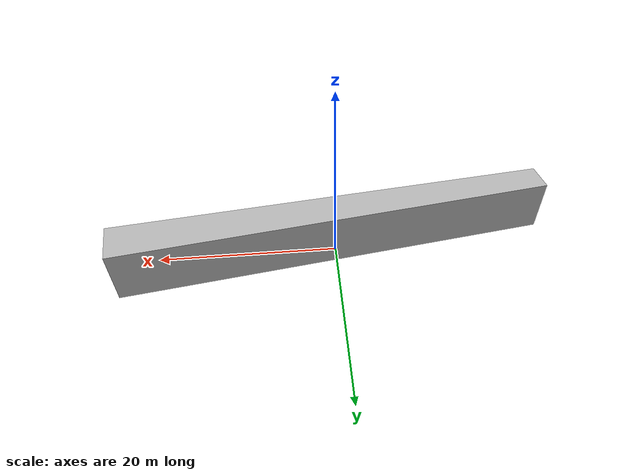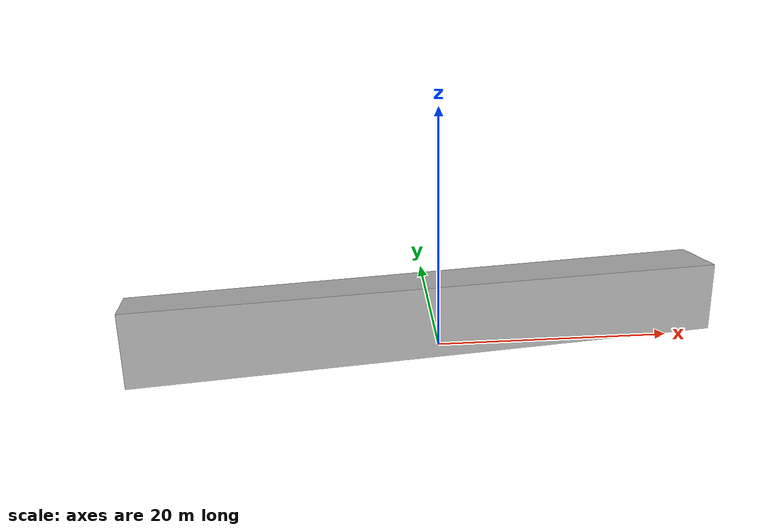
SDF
<?xml version="1.0" ?>
<sdf version="1.7">
  <model name="building_0007_assumed_a_cais_de_acesso_ferroviario">
    <static>true</static>
    <link name="building_link">
      <visual name="building_visual">
        <geometry>
          <mesh>
            <uri>model://building_0007_assumed_a_cais_de_acesso_ferroviario/meshes/construction_0007_assumed_A_Cais_de_acesso_ferroviario_h6m.obj</uri>
          </mesh>
        </geometry>
      </visual>
    <collision name="building_collision">
      <geometry>
        <mesh>
          <uri>model://building_0007_assumed_a_cais_de_acesso_ferroviario/meshes/construction_0007_assumed_A_Cais_de_acesso_ferroviario_h6m.obj</uri>
        </mesh>
      </geometry>
    </collision>
    </link>
  </model>
</sdf>
